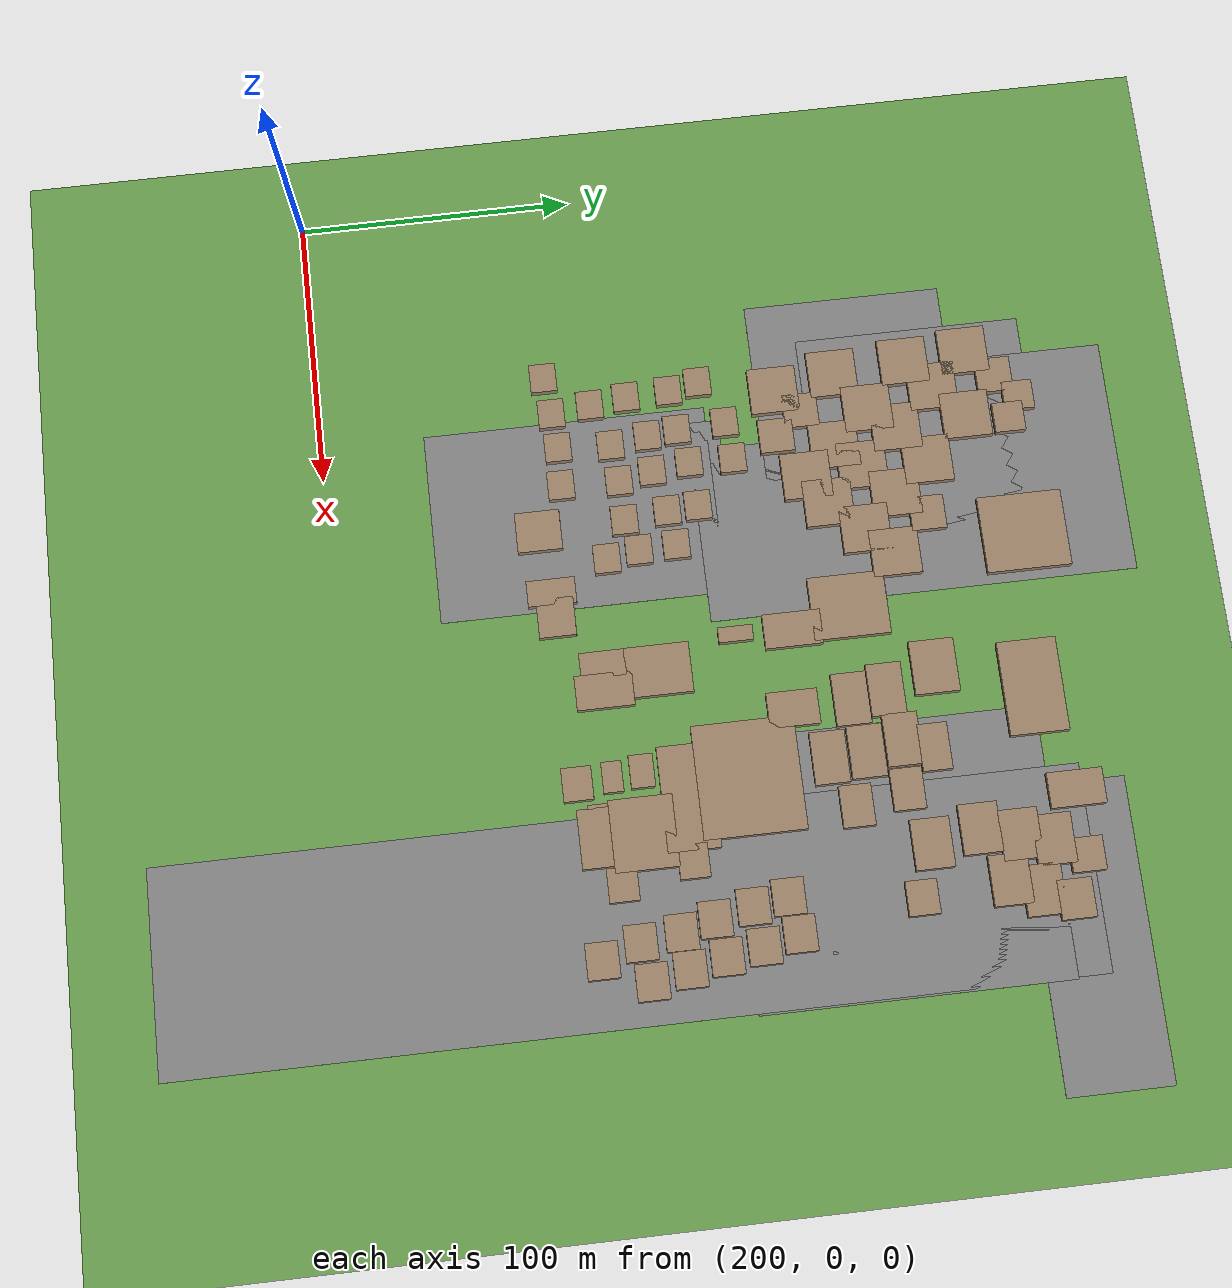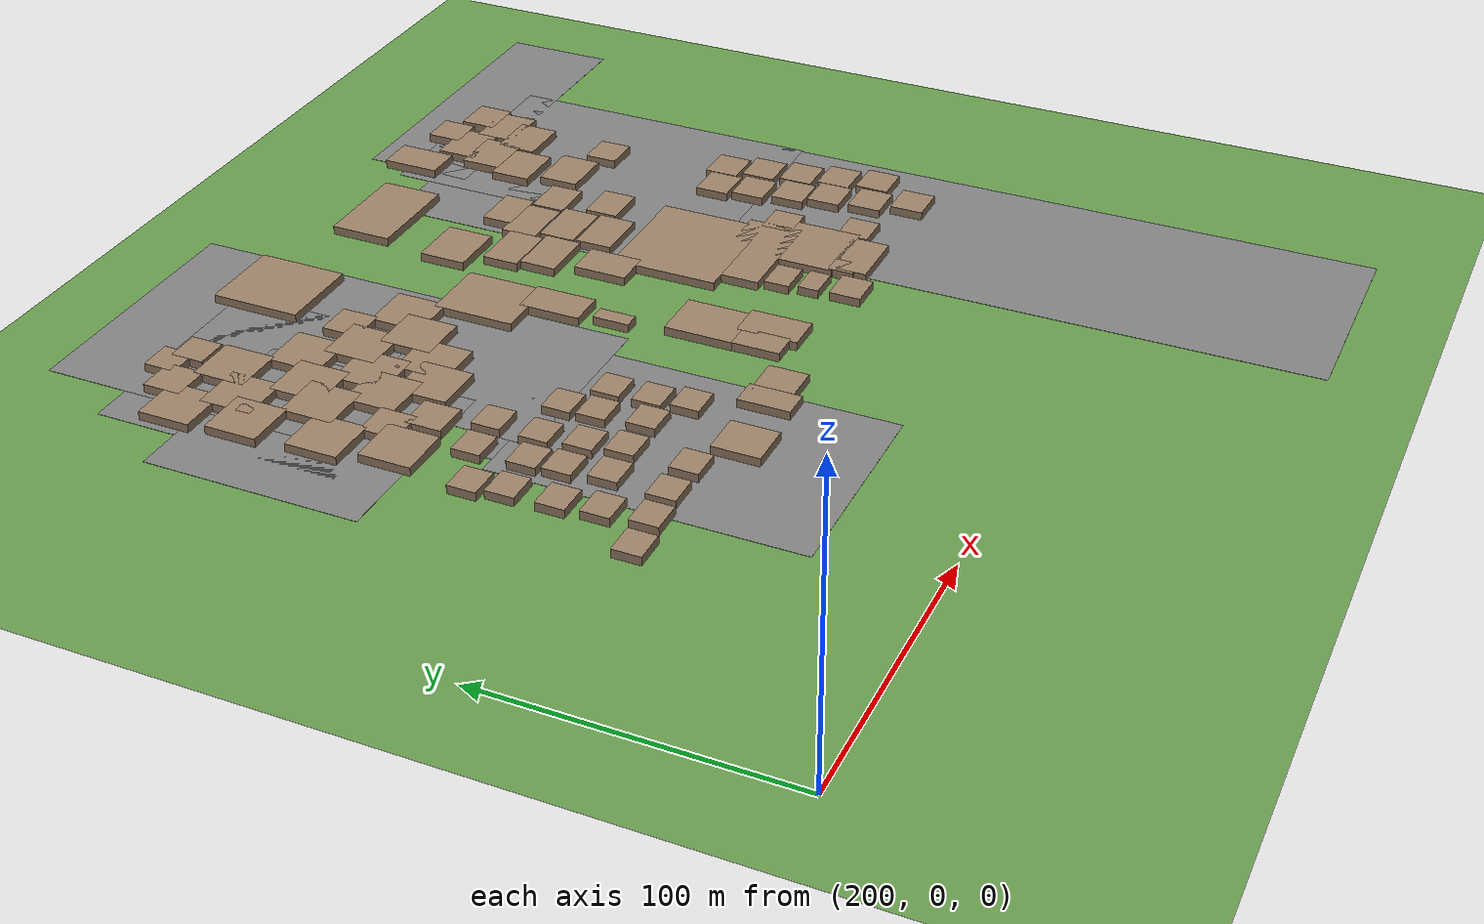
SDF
<sdf version="1.9">
 <world name="kimje_farmland">
  <model name="ground_plane">
   <static>true</static>
   <link name="link">
    <collision name="collision">
     <geometry><plane><normal>0 0 1</normal><size>2000 2000</size></plane></geometry>
    </collision>
    <visual name="visual">
     <geometry><plane><normal>0 0 1</normal><size>2000 2000</size></plane></geometry>
     <material><ambient>0.4 0.6 0.3 1</ambient><diffuse>0.4 0.6 0.3 1</diffuse></material>
    </visual>
   </link>
  </model>
  <model name="osm_23">
   <static>true</static>
   <pose>495.71 254.00 0.040 0 0 0</pose>
   <link name="link">
    <collision name="collision"><geometry><box><size>108.69 38.17 0.080</size></box></geometry></collision>
    <visual name="visual">
     <geometry><box><size>108.69 38.17 0.080</size></box></geometry>
     <material><ambient>0.5 0.5 0.5 1</ambient><diffuse>0.5 0.5 0.5 1</diffuse></material>
    </visual>
   </link>
  </model>
  <model name="osm_37">
   <static>true</static>
   <pose>472.38 92.51 0.040 0 0 0</pose>
   <link name="link">
    <collision name="collision"><geometry><box><size>74.79 330.50 0.080</size></box></geometry></collision>
    <visual name="visual">
     <geometry><box><size>74.79 330.50 0.080</size></box></geometry>
     <material><ambient>0.5 0.5 0.5 1</ambient><diffuse>0.5 0.5 0.5 1</diffuse></material>
    </visual>
   </link>
  </model>
  <model name="osm_38">
   <static>true</static>
   <pose>461.51 189.96 0.040 0 0 0</pose>
   <link name="link">
    <collision name="collision"><geometry><box><size>97.93 111.68 0.080</size></box></geometry></collision>
    <visual name="visual">
     <geometry><box><size>97.93 111.68 0.080</size></box></geometry>
     <material><ambient>0.5 0.5 0.5 1</ambient><diffuse>0.5 0.5 0.5 1</diffuse></material>
    </visual>
   </link>
  </model>
  <model name="osm_44">
   <static>true</static>
   <pose>322.63 243.07 0.040 0 0 0</pose>
   <link name="link">
    <collision name="collision"><geometry><box><size>87.27 94.97 0.080</size></box></geometry></collision>
    <visual name="visual">
     <geometry><box><size>87.27 94.97 0.080</size></box></geometry>
     <material><ambient>0.5 0.5 0.5 1</ambient><diffuse>0.5 0.5 0.5 1</diffuse></material>
    </visual>
   </link>
  </model>
  <model name="osm_48">
   <static>true</static>
   <pose>336.06 166.73 0.040 0 0 0</pose>
   <link name="link">
    <collision name="collision"><geometry><box><size>65.53 64.20 0.080</size></box></geometry></collision>
    <visual name="visual">
     <geometry><box><size>65.53 64.20 0.080</size></box></geometry>
     <material><ambient>0.5 0.5 0.5 1</ambient><diffuse>0.5 0.5 0.5 1</diffuse></material>
    </visual>
   </link>
  </model>
  <model name="osm_52">
   <static>true</static>
   <pose>303.56 220.24 0.040 0 0 0</pose>
   <link name="link">
    <collision name="collision"><geometry><box><size>76.70 83.14 0.080</size></box></geometry></collision>
    <visual name="visual">
     <geometry><box><size>76.70 83.14 0.080</size></box></geometry>
     <material><ambient>0.5 0.5 0.5 1</ambient><diffuse>0.5 0.5 0.5 1</diffuse></material>
    </visual>
   </link>
  </model>
  <model name="osm_55">
   <static>true</static>
   <pose>322.69 89.80 0.040 0 0 0</pose>
   <link name="link">
    <collision name="collision"><geometry><box><size>71.40 103.72 0.080</size></box></geometry></collision>
    <visual name="visual">
     <geometry><box><size>71.40 103.72 0.080</size></box></geometry>
     <material><ambient>0.5 0.5 0.5 1</ambient><diffuse>0.5 0.5 0.5 1</diffuse></material>
    </visual>
   </link>
  </model>
  <model name="osm_110">
   <static>true</static>
   <pose>309.56 123.73 0.040 0 0 0</pose>
   <link name="link">
    <collision name="collision"><geometry><box><size>34.09 45.24 0.080</size></box></geometry></collision>
    <visual name="visual">
     <geometry><box><size>34.09 45.24 0.080</size></box></geometry>
     <material><ambient>0.5 0.5 0.5 1</ambient><diffuse>0.5 0.5 0.5 1</diffuse></material>
    </visual>
   </link>
  </model>
  <model name="osm_124">
   <static>true</static>
   <pose>284.02 197.73 0.040 0 0 0</pose>
   <link name="link">
    <collision name="collision"><geometry><box><size>68.20 72.76 0.080</size></box></geometry></collision>
    <visual name="visual">
     <geometry><box><size>68.20 72.76 0.080</size></box></geometry>
     <material><ambient>0.5 0.5 0.5 1</ambient><diffuse>0.5 0.5 0.5 1</diffuse></material>
    </visual>
   </link>
  </model>
  <model name="osm_125">
   <static>true</static>
   <pose>302.59 221.21 0.040 0 0 0</pose>
   <link name="link">
    <collision name="collision"><geometry><box><size>45.05 38.42 0.080</size></box></geometry></collision>
    <visual name="visual">
     <geometry><box><size>45.05 38.42 0.080</size></box></geometry>
     <material><ambient>0.5 0.5 0.5 1</ambient><diffuse>0.5 0.5 0.5 1</diffuse></material>
    </visual>
   </link>
  </model>
  <model name="osm_131">
   <static>true</static>
   <pose>480.58 173.67 0.040 0 0 0</pose>
   <link name="link">
    <collision name="collision"><geometry><box><size>23.74 22.22 0.080</size></box></geometry></collision>
    <visual name="visual">
     <geometry><box><size>23.74 22.22 0.080</size></box></geometry>
     <material><ambient>0.5 0.5 0.5 1</ambient><diffuse>0.5 0.5 0.5 1</diffuse></material>
    </visual>
   </link>
  </model>
  <model name="osm_1109">
   <static>true</static>
   <pose>296.20 257.35 1.500 0 0 0</pose>
   <link name="link">
    <collision name="collision"><geometry><box><size>11.01 11.03 3.000</size></box></geometry></collision>
    <visual name="visual">
     <geometry><box><size>11.01 11.03 3.000</size></box></geometry>
     <material><ambient>0.6 0.5 0.4 1</ambient><diffuse>0.6 0.5 0.4 1</diffuse></material>
    </visual>
   </link>
  </model>
  <model name="osm_1110">
   <static>true</static>
   <pose>287.37 249.57 1.500 0 0 0</pose>
   <link name="link">
    <collision name="collision"><geometry><box><size>13.13 13.04 3.000</size></box></geometry></collision>
    <visual name="visual">
     <geometry><box><size>13.13 13.04 3.000</size></box></geometry>
     <material><ambient>0.6 0.5 0.4 1</ambient><diffuse>0.6 0.5 0.4 1</diffuse></material>
    </visual>
   </link>
  </model>
  <model name="osm_1111">
   <static>true</static>
   <pose>304.28 252.70 1.500 0 0 0</pose>
   <link name="link">
    <collision name="collision"><geometry><box><size>11.35 11.17 3.000</size></box></geometry></collision>
    <visual name="visual">
     <geometry><box><size>11.35 11.17 3.000</size></box></geometry>
     <material><ambient>0.6 0.5 0.4 1</ambient><diffuse>0.6 0.5 0.4 1</diffuse></material>
    </visual>
   </link>
  </model>
  <model name="osm_1119">
   <static>true</static>
   <pose>348.49 251.49 1.500 0 0 0</pose>
   <link name="link">
    <collision name="collision"><geometry><box><size>28.58 30.75 3.000</size></box></geometry></collision>
    <visual name="visual">
     <geometry><box><size>28.58 30.75 3.000</size></box></geometry>
     <material><ambient>0.6 0.5 0.4 1</ambient><diffuse>0.6 0.5 0.4 1</diffuse></material>
    </visual>
   </link>
  </model>
  <model name="osm_1131">
   <static>true</static>
   <pose>406.07 245.63 1.500 0 0 0</pose>
   <link name="link">
    <collision name="collision"><geometry><box><size>34.39 21.31 3.000</size></box></geometry></collision>
    <visual name="visual">
     <geometry><box><size>34.39 21.31 3.000</size></box></geometry>
     <material><ambient>0.6 0.5 0.4 1</ambient><diffuse>0.6 0.5 0.4 1</diffuse></material>
    </visual>
   </link>
  </model>
  <model name="osm_1135">
   <static>true</static>
   <pose>444.30 255.18 1.500 0 0 0</pose>
   <link name="link">
    <collision name="collision"><geometry><box><size>12.84 19.86 3.000</size></box></geometry></collision>
    <visual name="visual">
     <geometry><box><size>12.84 19.86 3.000</size></box></geometry>
     <material><ambient>0.6 0.5 0.4 1</ambient><diffuse>0.6 0.5 0.4 1</diffuse></material>
    </visual>
   </link>
  </model>
  <model name="osm_1142">
   <static>true</static>
   <pose>468.00 255.26 1.500 0 0 0</pose>
   <link name="link">
    <collision name="collision"><geometry><box><size>12.22 11.98 3.000</size></box></geometry></collision>
    <visual name="visual">
     <geometry><box><size>12.22 11.98 3.000</size></box></geometry>
     <material><ambient>0.6 0.5 0.4 1</ambient><diffuse>0.6 0.5 0.4 1</diffuse></material>
    </visual>
   </link>
  </model>
  <model name="osm_1143">
   <static>true</static>
   <pose>483.04 249.04 1.500 0 0 0</pose>
   <link name="link">
    <collision name="collision"><geometry><box><size>14.06 12.33 3.000</size></box></geometry></collision>
    <visual name="visual">
     <geometry><box><size>14.06 12.33 3.000</size></box></geometry>
     <material><ambient>0.6 0.5 0.4 1</ambient><diffuse>0.6 0.5 0.4 1</diffuse></material>
    </visual>
   </link>
  </model>
  <model name="osm_1226">
   <static>true</static>
   <pose>485.71 82.69 1.500 0 0 0</pose>
   <link name="link">
    <collision name="collision"><geometry><box><size>13.01 11.50 3.000</size></box></geometry></collision>
    <visual name="visual">
     <geometry><box><size>13.01 11.50 3.000</size></box></geometry>
     <material><ambient>0.6 0.5 0.4 1</ambient><diffuse>0.6 0.5 0.4 1</diffuse></material>
    </visual>
   </link>
  </model>
  <model name="osm_1227">
   <static>true</static>
   <pose>481.03 96.54 1.500 0 0 0</pose>
   <link name="link">
    <collision name="collision"><geometry><box><size>13.00 11.50 3.000</size></box></geometry></collision>
    <visual name="visual">
     <geometry><box><size>13.00 11.50 3.000</size></box></geometry>
     <material><ambient>0.6 0.5 0.4 1</ambient><diffuse>0.6 0.5 0.4 1</diffuse></material>
    </visual>
   </link>
  </model>
  <model name="osm_1228">
   <static>true</static>
   <pose>494.89 99.07 1.500 0 0 0</pose>
   <link name="link">
    <collision name="collision"><geometry><box><size>13.00 11.50 3.000</size></box></geometry></collision>
    <visual name="visual">
     <geometry><box><size>13.00 11.50 3.000</size></box></geometry>
     <material><ambient>0.6 0.5 0.4 1</ambient><diffuse>0.6 0.5 0.4 1</diffuse></material>
    </visual>
   </link>
  </model>
  <model name="osm_1229">
   <static>true</static>
   <pose>492.19 112.56 1.500 0 0 0</pose>
   <link name="link">
    <collision name="collision"><geometry><box><size>13.00 11.50 3.000</size></box></geometry></collision>
    <visual name="visual">
     <geometry><box><size>13.00 11.50 3.000</size></box></geometry>
     <material><ambient>0.6 0.5 0.4 1</ambient><diffuse>0.6 0.5 0.4 1</diffuse></material>
    </visual>
   </link>
  </model>
  <model name="osm_1230">
   <static>true</static>
   <pose>479.05 110.95 1.500 0 0 0</pose>
   <link name="link">
    <collision name="collision"><geometry><box><size>13.01 11.50 3.000</size></box></geometry></collision>
    <visual name="visual">
     <geometry><box><size>13.01 11.50 3.000</size></box></geometry>
     <material><ambient>0.6 0.5 0.4 1</ambient><diffuse>0.6 0.5 0.4 1</diffuse></material>
    </visual>
   </link>
  </model>
  <model name="osm_1238">
   <static>true</static>
   <pose>489.31 125.70 1.500 0 0 0</pose>
   <link name="link">
    <collision name="collision"><geometry><box><size>13.00 11.51 3.000</size></box></geometry></collision>
    <visual name="visual">
     <geometry><box><size>13.00 11.51 3.000</size></box></geometry>
     <material><ambient>0.6 0.5 0.4 1</ambient><diffuse>0.6 0.5 0.4 1</diffuse></material>
    </visual>
   </link>
  </model>
  <model name="osm_1239">
   <static>true</static>
   <pose>475.81 123.18 1.500 0 0 0</pose>
   <link name="link">
    <collision name="collision"><geometry><box><size>13.00 11.50 3.000</size></box></geometry></collision>
    <visual name="visual">
     <geometry><box><size>13.00 11.50 3.000</size></box></geometry>
     <material><ambient>0.6 0.5 0.4 1</ambient><diffuse>0.6 0.5 0.4 1</diffuse></material>
    </visual>
   </link>
  </model>
  <model name="osm_1240">
   <static>true</static>
   <pose>472.93 136.86 1.500 0 0 0</pose>
   <link name="link">
    <collision name="collision"><geometry><box><size>13.00 11.50 3.000</size></box></geometry></collision>
    <visual name="visual">
     <geometry><box><size>13.00 11.50 3.000</size></box></geometry>
     <material><ambient>0.6 0.5 0.4 1</ambient><diffuse>0.6 0.5 0.4 1</diffuse></material>
    </visual>
   </link>
  </model>
  <model name="osm_1241">
   <static>true</static>
   <pose>487.15 139.02 1.500 0 0 0</pose>
   <link name="link">
    <collision name="collision"><geometry><box><size>13.01 11.50 3.000</size></box></geometry></collision>
    <visual name="visual">
     <geometry><box><size>13.01 11.50 3.000</size></box></geometry>
     <material><ambient>0.6 0.5 0.4 1</ambient><diffuse>0.6 0.5 0.4 1</diffuse></material>
    </visual>
   </link>
  </model>
  <model name="osm_1242">
   <static>true</static>
   <pose>484.27 151.80 1.500 0 0 0</pose>
   <link name="link">
    <collision name="collision"><geometry><box><size>13.00 11.50 3.000</size></box></geometry></collision>
    <visual name="visual">
     <geometry><box><size>13.00 11.50 3.000</size></box></geometry>
     <material><ambient>0.6 0.5 0.4 1</ambient><diffuse>0.6 0.5 0.4 1</diffuse></material>
    </visual>
   </link>
  </model>
  <model name="osm_1243">
   <static>true</static>
   <pose>470.95 149.46 1.500 0 0 0</pose>
   <link name="link">
    <collision name="collision"><geometry><box><size>13.01 11.50 3.000</size></box></geometry></collision>
    <visual name="visual">
     <geometry><box><size>13.01 11.50 3.000</size></box></geometry>
     <material><ambient>0.6 0.5 0.4 1</ambient><diffuse>0.6 0.5 0.4 1</diffuse></material>
    </visual>
   </link>
  </model>
  <model name="osm_1258">
   <static>true</static>
   <pose>476.59 195.83 1.500 0 0 0</pose>
   <link name="link">
    <collision name="collision"><geometry><box><size>12.39 11.13 3.000</size></box></geometry></collision>
    <visual name="visual">
     <geometry><box><size>12.39 11.13 3.000</size></box></geometry>
     <material><ambient>0.6 0.5 0.4 1</ambient><diffuse>0.6 0.5 0.4 1</diffuse></material>
    </visual>
   </link>
  </model>
  <model name="osm_1263">
   <static>true</static>
   <pose>478.64 238.23 1.500 0 0 0</pose>
   <link name="link">
    <collision name="collision"><geometry><box><size>18.04 13.90 3.000</size></box></geometry></collision>
    <visual name="visual">
     <geometry><box><size>18.04 13.90 3.000</size></box></geometry>
     <material><ambient>0.6 0.5 0.4 1</ambient><diffuse>0.6 0.5 0.4 1</diffuse></material>
    </visual>
   </link>
  </model>
  <model name="osm_1264">
   <static>true</static>
   <pose>473.79 227.25 1.500 0 0 0</pose>
   <link name="link">
    <collision name="collision"><geometry><box><size>18.05 13.91 3.000</size></box></geometry></collision>
    <visual name="visual">
     <geometry><box><size>18.05 13.91 3.000</size></box></geometry>
     <material><ambient>0.6 0.5 0.4 1</ambient><diffuse>0.6 0.5 0.4 1</diffuse></material>
    </visual>
   </link>
  </model>
  <model name="osm_1265">
   <static>true</static>
   <pose>458.30 233.01 1.500 0 0 0</pose>
   <link name="link">
    <collision name="collision"><geometry><box><size>18.04 13.90 3.000</size></box></geometry></collision>
    <visual name="visual">
     <geometry><box><size>18.04 13.90 3.000</size></box></geometry>
     <material><ambient>0.6 0.5 0.4 1</ambient><diffuse>0.6 0.5 0.4 1</diffuse></material>
    </visual>
   </link>
  </model>
  <model name="osm_1266">
   <static>true</static>
   <pose>454.70 219.33 1.500 0 0 0</pose>
   <link name="link">
    <collision name="collision"><geometry><box><size>18.05 13.91 3.000</size></box></geometry></collision>
    <visual name="visual">
     <geometry><box><size>18.05 13.91 3.000</size></box></geometry>
     <material><ambient>0.6 0.5 0.4 1</ambient><diffuse>0.6 0.5 0.4 1</diffuse></material>
    </visual>
   </link>
  </model>
  <model name="osm_1267">
   <static>true</static>
   <pose>461.36 244.53 1.500 0 0 0</pose>
   <link name="link">
    <collision name="collision"><geometry><box><size>18.04 13.90 3.000</size></box></geometry></collision>
    <visual name="visual">
     <geometry><box><size>18.04 13.90 3.000</size></box></geometry>
     <material><ambient>0.6 0.5 0.4 1</ambient><diffuse>0.6 0.5 0.4 1</diffuse></material>
    </visual>
   </link>
  </model>
  <model name="osm_1268">
   <static>true</static>
   <pose>458.12 201.87 1.500 0 0 0</pose>
   <link name="link">
    <collision name="collision"><geometry><box><size>18.04 13.90 3.000</size></box></geometry></collision>
    <visual name="visual">
     <geometry><box><size>18.04 13.90 3.000</size></box></geometry>
     <material><ambient>0.6 0.5 0.4 1</ambient><diffuse>0.6 0.5 0.4 1</diffuse></material>
    </visual>
   </link>
  </model>
  <model name="osm_1269">
   <static>true</static>
   <pose>403.32 180.63 1.500 0 0 0</pose>
   <link name="link">
    <collision name="collision"><geometry><box><size>19.08 12.56 3.000</size></box></geometry></collision>
    <visual name="visual">
     <geometry><box><size>19.08 12.56 3.000</size></box></geometry>
     <material><ambient>0.6 0.5 0.4 1</ambient><diffuse>0.6 0.5 0.4 1</diffuse></material>
    </visual>
   </link>
  </model>
  <model name="osm_1270">
   <static>true</static>
   <pose>401.23 193.48 1.500 0 0 0</pose>
   <link name="link">
    <collision name="collision"><geometry><box><size>19.08 12.55 3.000</size></box></geometry></collision>
    <visual name="visual">
     <geometry><box><size>19.08 12.55 3.000</size></box></geometry>
     <material><ambient>0.6 0.5 0.4 1</ambient><diffuse>0.6 0.5 0.4 1</diffuse></material>
    </visual>
   </link>
  </model>
  <model name="osm_1271">
   <static>true</static>
   <pose>419.95 196.72 1.500 0 0 0</pose>
   <link name="link">
    <collision name="collision"><geometry><box><size>19.08 12.55 3.000</size></box></geometry></collision>
    <visual name="visual">
     <geometry><box><size>19.08 12.55 3.000</size></box></geometry>
     <material><ambient>0.6 0.5 0.4 1</ambient><diffuse>0.6 0.5 0.4 1</diffuse></material>
    </visual>
   </link>
  </model>
  <model name="osm_1272">
   <static>true</static>
   <pose>422.83 183.58 1.500 0 0 0</pose>
   <link name="link">
    <collision name="collision"><geometry><box><size>19.08 12.56 3.000</size></box></geometry></collision>
    <visual name="visual">
     <geometry><box><size>19.08 12.56 3.000</size></box></geometry>
     <material><ambient>0.6 0.5 0.4 1</ambient><diffuse>0.6 0.5 0.4 1</diffuse></material>
    </visual>
   </link>
  </model>
  <model name="osm_1273">
   <static>true</static>
   <pose>423.55 170.26 1.500 0 0 0</pose>
   <link name="link">
    <collision name="collision"><geometry><box><size>19.08 12.56 3.000</size></box></geometry></collision>
    <visual name="visual">
     <geometry><box><size>19.08 12.56 3.000</size></box></geometry>
     <material><ambient>0.6 0.5 0.4 1</ambient><diffuse>0.6 0.5 0.4 1</diffuse></material>
    </visual>
   </link>
  </model>
  <model name="osm_1274">
   <static>true</static>
   <pose>437.87 196.07 1.500 0 0 0</pose>
   <link name="link">
    <collision name="collision"><geometry><box><size>15.11 11.48 3.000</size></box></geometry></collision>
    <visual name="visual">
     <geometry><box><size>15.11 11.48 3.000</size></box></geometry>
     <material><ambient>0.6 0.5 0.4 1</ambient><diffuse>0.6 0.5 0.4 1</diffuse></material>
    </visual>
   </link>
  </model>
  <model name="osm_1275">
   <static>true</static>
   <pose>441.83 177.53 1.500 0 0 0</pose>
   <link name="link">
    <collision name="collision"><geometry><box><size>15.11 11.48 3.000</size></box></geometry></collision>
    <visual name="visual">
     <geometry><box><size>15.11 11.48 3.000</size></box></geometry>
     <material><ambient>0.6 0.5 0.4 1</ambient><diffuse>0.6 0.5 0.4 1</diffuse></material>
    </visual>
   </link>
  </model>
  <model name="osm_1276">
   <static>true</static>
   <pose>404.44 159.70 1.500 0 0 0</pose>
   <link name="link">
    <collision name="collision"><geometry><box><size>12.95 18.27 3.000</size></box></geometry></collision>
    <visual name="visual">
     <geometry><box><size>12.95 18.27 3.000</size></box></geometry>
     <material><ambient>0.6 0.5 0.4 1</ambient><diffuse>0.6 0.5 0.4 1</diffuse></material>
    </visual>
   </link>
  </model>
  <model name="osm_1277">
   <static>true</static>
   <pose>460.19 92.65 1.500 0 0 0</pose>
   <link name="link">
    <collision name="collision"><geometry><box><size>12.18 10.73 3.000</size></box></geometry></collision>
    <visual name="visual">
     <geometry><box><size>12.18 10.73 3.000</size></box></geometry>
     <material><ambient>0.6 0.5 0.4 1</ambient><diffuse>0.6 0.5 0.4 1</diffuse></material>
    </visual>
   </link>
  </model>
  <model name="osm_1278">
   <static>true</static>
   <pose>454.81 118.14 1.500 0 0 0</pose>
   <link name="link">
    <collision name="collision"><geometry><box><size>12.17 10.72 3.000</size></box></geometry></collision>
    <visual name="visual">
     <geometry><box><size>12.17 10.72 3.000</size></box></geometry>
     <material><ambient>0.6 0.5 0.4 1</ambient><diffuse>0.6 0.5 0.4 1</diffuse></material>
    </visual>
   </link>
  </model>
  <model name="osm_1280">
   <static>true</static>
   <pose>422.92 80.47 1.500 0 0 0</pose>
   <link name="link">
    <collision name="collision"><geometry><box><size>12.18 10.72 3.000</size></box></geometry></collision>
    <visual name="visual">
     <geometry><box><size>12.18 10.72 3.000</size></box></geometry>
     <material><ambient>0.6 0.5 0.4 1</ambient><diffuse>0.6 0.5 0.4 1</diffuse></material>
    </visual>
   </link>
  </model>
  <model name="osm_1321">
   <static>true</static>
   <pose>308.31 133.69 1.500 0 0 0</pose>
   <link name="link">
    <collision name="collision"><geometry><box><size>10.86 9.65 3.000</size></box></geometry></collision>
    <visual name="visual">
     <geometry><box><size>10.86 9.65 3.000</size></box></geometry>
     <material><ambient>0.6 0.5 0.4 1</ambient><diffuse>0.6 0.5 0.4 1</diffuse></material>
    </visual>
   </link>
  </model>
  <model name="osm_1322">
   <static>true</static>
   <pose>310.07 119.88 1.500 0 0 0</pose>
   <link name="link">
    <collision name="collision"><geometry><box><size>10.86 9.66 3.000</size></box></geometry></collision>
    <visual name="visual">
     <geometry><box><size>10.86 9.66 3.000</size></box></geometry>
     <material><ambient>0.6 0.5 0.4 1</ambient><diffuse>0.6 0.5 0.4 1</diffuse></material>
    </visual>
   </link>
  </model>
  <model name="osm_1323">
   <static>true</static>
   <pose>312.59 107.45 1.500 0 0 0</pose>
   <link name="link">
    <collision name="collision"><geometry><box><size>10.86 9.66 3.000</size></box></geometry></collision>
    <visual name="visual">
     <geometry><box><size>10.86 9.66 3.000</size></box></geometry>
     <material><ambient>0.6 0.5 0.4 1</ambient><diffuse>0.6 0.5 0.4 1</diffuse></material>
    </visual>
   </link>
  </model>
  <model name="osm_1324">
   <static>true</static>
   <pose>327.71 107.82 1.500 0 0 0</pose>
   <link name="link">
    <collision name="collision"><geometry><box><size>10.85 9.66 3.000</size></box></geometry></collision>
    <visual name="visual">
     <geometry><box><size>10.85 9.66 3.000</size></box></geometry>
     <material><ambient>0.6 0.5 0.4 1</ambient><diffuse>0.6 0.5 0.4 1</diffuse></material>
    </visual>
   </link>
  </model>
  <model name="osm_1325">
   <static>true</static>
   <pose>325.90 123.65 1.500 0 0 0</pose>
   <link name="link">
    <collision name="collision"><geometry><box><size>10.86 9.66 3.000</size></box></geometry></collision>
    <visual name="visual">
     <geometry><box><size>10.86 9.66 3.000</size></box></geometry>
     <material><ambient>0.6 0.5 0.4 1</ambient><diffuse>0.6 0.5 0.4 1</diffuse></material>
    </visual>
   </link>
  </model>
  <model name="osm_1326">
   <static>true</static>
   <pose>325.19 135.00 1.500 0 0 0</pose>
   <link name="link">
    <collision name="collision"><geometry><box><size>10.85 9.66 3.000</size></box></geometry></collision>
    <visual name="visual">
     <geometry><box><size>10.85 9.66 3.000</size></box></geometry>
     <material><ambient>0.6 0.5 0.4 1</ambient><diffuse>0.6 0.5 0.4 1</diffuse></material>
    </visual>
   </link>
  </model>
  <model name="osm_1327">
   <static>true</static>
   <pose>279.83 129.24 1.500 0 0 0</pose>
   <link name="link">
    <collision name="collision"><geometry><box><size>10.85 9.65 3.000</size></box></geometry></collision>
    <visual name="visual">
     <geometry><box><size>10.85 9.65 3.000</size></box></geometry>
     <material><ambient>0.6 0.5 0.4 1</ambient><diffuse>0.6 0.5 0.4 1</diffuse></material>
    </visual>
   </link>
  </model>
  <model name="osm_1328">
   <static>true</static>
   <pose>277.67 140.39 1.500 0 0 0</pose>
   <link name="link">
    <collision name="collision"><geometry><box><size>10.85 9.66 3.000</size></box></geometry></collision>
    <visual name="visual">
     <geometry><box><size>10.85 9.66 3.000</size></box></geometry>
     <material><ambient>0.6 0.5 0.4 1</ambient><diffuse>0.6 0.5 0.4 1</diffuse></material>
    </visual>
   </link>
  </model>
  <model name="osm_1329">
   <static>true</static>
   <pose>280.55 113.40 1.500 0 0 0</pose>
   <link name="link">
    <collision name="collision"><geometry><box><size>10.85 9.65 3.000</size></box></geometry></collision>
    <visual name="visual">
     <geometry><box><size>10.85 9.65 3.000</size></box></geometry>
     <material><ambient>0.6 0.5 0.4 1</ambient><diffuse>0.6 0.5 0.4 1</diffuse></material>
    </visual>
   </link>
  </model>
  <model name="osm_1330">
   <static>true</static>
   <pose>282.17 99.90 1.500 0 0 0</pose>
   <link name="link">
    <collision name="collision"><geometry><box><size>10.86 9.66 3.000</size></box></geometry></collision>
    <visual name="visual">
     <geometry><box><size>10.86 9.66 3.000</size></box></geometry>
     <material><ambient>0.6 0.5 0.4 1</ambient><diffuse>0.6 0.5 0.4 1</diffuse></material>
    </visual>
   </link>
  </model>
  <model name="osm_1333">
   <static>true</static>
   <pose>298.55 105.84 1.500 0 0 0</pose>
   <link name="link">
    <collision name="collision"><geometry><box><size>10.86 9.65 3.000</size></box></geometry></collision>
    <visual name="visual">
     <geometry><box><size>10.86 9.65 3.000</size></box></geometry>
     <material><ambient>0.6 0.5 0.4 1</ambient><diffuse>0.6 0.5 0.4 1</diffuse></material>
    </visual>
   </link>
  </model>
  <model name="osm_1334">
   <static>true</static>
   <pose>296.39 119.70 1.500 0 0 0</pose>
   <link name="link">
    <collision name="collision"><geometry><box><size>10.86 9.65 3.000</size></box></geometry></collision>
    <visual name="visual">
     <geometry><box><size>10.86 9.65 3.000</size></box></geometry>
     <material><ambient>0.6 0.5 0.4 1</ambient><diffuse>0.6 0.5 0.4 1</diffuse></material>
    </visual>
   </link>
  </model>
  <model name="osm_1335">
   <static>true</static>
   <pose>295.31 130.68 1.500 0 0 0</pose>
   <link name="link">
    <collision name="collision"><geometry><box><size>10.86 9.66 3.000</size></box></geometry></collision>
    <visual name="visual">
     <geometry><box><size>10.86 9.66 3.000</size></box></geometry>
     <material><ambient>0.6 0.5 0.4 1</ambient><diffuse>0.6 0.5 0.4 1</diffuse></material>
    </visual>
   </link>
  </model>
  <model name="osm_1336">
   <static>true</static>
   <pose>339.04 125.46 1.500 0 0 0</pose>
   <link name="link">
    <collision name="collision"><geometry><box><size>10.85 9.66 3.000</size></box></geometry></collision>
    <visual name="visual">
     <geometry><box><size>10.85 9.66 3.000</size></box></geometry>
     <material><ambient>0.6 0.5 0.4 1</ambient><diffuse>0.6 0.5 0.4 1</diffuse></material>
    </visual>
   </link>
  </model>
  <model name="osm_1337">
   <static>true</static>
   <pose>339.58 111.77 1.500 0 0 0</pose>
   <link name="link">
    <collision name="collision"><geometry><box><size>10.86 9.66 3.000</size></box></geometry></collision>
    <visual name="visual">
     <geometry><box><size>10.86 9.66 3.000</size></box></geometry>
     <material><ambient>0.6 0.5 0.4 1</ambient><diffuse>0.6 0.5 0.4 1</diffuse></material>
    </visual>
   </link>
  </model>
  <model name="osm_1338">
   <static>true</static>
   <pose>341.56 99.90 1.500 0 0 0</pose>
   <link name="link">
    <collision name="collision"><geometry><box><size>10.85 9.66 3.000</size></box></geometry></collision>
    <visual name="visual">
     <geometry><box><size>10.85 9.66 3.000</size></box></geometry>
     <material><ambient>0.6 0.5 0.4 1</ambient><diffuse>0.6 0.5 0.4 1</diffuse></material>
    </visual>
   </link>
  </model>
  <model name="osm_1339">
   <static>true</static>
   <pose>311.86 86.22 1.500 0 0 0</pose>
   <link name="link">
    <collision name="collision"><geometry><box><size>10.86 9.66 3.000</size></box></geometry></collision>
    <visual name="visual">
     <geometry><box><size>10.86 9.66 3.000</size></box></geometry>
     <material><ambient>0.6 0.5 0.4 1</ambient><diffuse>0.6 0.5 0.4 1</diffuse></material>
    </visual>
   </link>
  </model>
  <model name="osm_1340">
   <static>true</static>
   <pose>297.29 86.58 1.500 0 0 0</pose>
   <link name="link">
    <collision name="collision"><geometry><box><size>10.85 9.65 3.000</size></box></geometry></collision>
    <visual name="visual">
     <geometry><box><size>10.85 9.65 3.000</size></box></geometry>
     <material><ambient>0.6 0.5 0.4 1</ambient><diffuse>0.6 0.5 0.4 1</diffuse></material>
    </visual>
   </link>
  </model>
  <model name="osm_1341">
   <static>true</static>
   <pose>283.97 85.50 1.500 0 0 0</pose>
   <link name="link">
    <collision name="collision"><geometry><box><size>10.86 9.65 3.000</size></box></geometry></collision>
    <visual name="visual">
     <geometry><box><size>10.86 9.65 3.000</size></box></geometry>
     <material><ambient>0.6 0.5 0.4 1</ambient><diffuse>0.6 0.5 0.4 1</diffuse></material>
    </visual>
   </link>
  </model>
  <model name="osm_1342">
   <static>true</static>
   <pose>269.75 83.88 1.500 0 0 0</pose>
   <link name="link">
    <collision name="collision"><geometry><box><size>10.86 9.66 3.000</size></box></geometry></collision>
    <visual name="visual">
     <geometry><box><size>10.86 9.66 3.000</size></box></geometry>
     <material><ambient>0.6 0.5 0.4 1</ambient><diffuse>0.6 0.5 0.4 1</diffuse></material>
    </visual>
   </link>
  </model>
  <model name="osm_1344">
   <static>true</static>
   <pose>308.63 149.75 1.500 0 0 0</pose>
   <link name="link">
    <collision name="collision"><geometry><box><size>10.85 9.66 3.000</size></box></geometry></collision>
    <visual name="visual">
     <geometry><box><size>10.85 9.66 3.000</size></box></geometry>
     <material><ambient>0.6 0.5 0.4 1</ambient><diffuse>0.6 0.5 0.4 1</diffuse></material>
    </visual>
   </link>
  </model>
  <model name="osm_1345">
   <static>true</static>
   <pose>294.41 148.49 1.500 0 0 0</pose>
   <link name="link">
    <collision name="collision"><geometry><box><size>10.85 9.65 3.000</size></box></geometry></collision>
    <visual name="visual">
     <geometry><box><size>10.85 9.65 3.000</size></box></geometry>
     <material><ambient>0.6 0.5 0.4 1</ambient><diffuse>0.6 0.5 0.4 1</diffuse></material>
    </visual>
   </link>
  </model>
  <model name="osm_1346">
   <static>true</static>
   <pose>301.81 166.74 1.500 0 0 0</pose>
   <link name="link">
    <collision name="collision"><geometry><box><size>12.71 12.62 3.000</size></box></geometry></collision>
    <visual name="visual">
     <geometry><box><size>12.71 12.62 3.000</size></box></geometry>
     <material><ambient>0.6 0.5 0.4 1</ambient><diffuse>0.6 0.5 0.4 1</diffuse></material>
    </visual>
   </link>
  </model>
  <model name="osm_1347">
   <static>true</static>
   <pose>293.09 176.83 1.500 0 0 0</pose>
   <link name="link">
    <collision name="collision"><geometry><box><size>12.72 12.63 3.000</size></box></geometry></collision>
    <visual name="visual">
     <geometry><box><size>12.72 12.63 3.000</size></box></geometry>
     <material><ambient>0.6 0.5 0.4 1</ambient><diffuse>0.6 0.5 0.4 1</diffuse></material>
    </visual>
   </link>
  </model>
  <model name="osm_1349">
   <static>true</static>
   <pose>337.55 217.69 1.500 0 0 0</pose>
   <link name="link">
    <collision name="collision"><geometry><box><size>12.71 12.62 3.000</size></box></geometry></collision>
    <visual name="visual">
     <geometry><box><size>12.71 12.62 3.000</size></box></geometry>
     <material><ambient>0.6 0.5 0.4 1</ambient><diffuse>0.6 0.5 0.4 1</diffuse></material>
    </visual>
   </link>
  </model>
  <model name="osm_1350">
   <static>true</static>
   <pose>294.81 201.34 1.500 0 0 0</pose>
   <link name="link">
    <collision name="collision"><geometry><box><size>17.54 17.70 3.000</size></box></geometry></collision>
    <visual name="visual">
     <geometry><box><size>17.54 17.70 3.000</size></box></geometry>
     <material><ambient>0.6 0.5 0.4 1</ambient><diffuse>0.6 0.5 0.4 1</diffuse></material>
    </visual>
   </link>
  </model>
  <model name="osm_1351">
   <static>true</static>
   <pose>307.66 187.42 1.500 0 0 0</pose>
   <link name="link">
    <collision name="collision"><geometry><box><size>17.54 17.70 3.000</size></box></geometry></collision>
    <visual name="visual">
     <geometry><box><size>17.54 17.70 3.000</size></box></geometry>
     <material><ambient>0.6 0.5 0.4 1</ambient><diffuse>0.6 0.5 0.4 1</diffuse></material>
    </visual>
   </link>
  </model>
  <model name="osm_1352">
   <static>true</static>
   <pose>329.43 182.38 1.500 0 0 0</pose>
   <link name="link">
    <collision name="collision"><geometry><box><size>17.54 17.70 3.000</size></box></geometry></collision>
    <visual name="visual">
     <geometry><box><size>17.54 17.70 3.000</size></box></geometry>
     <material><ambient>0.6 0.5 0.4 1</ambient><diffuse>0.6 0.5 0.4 1</diffuse></material>
    </visual>
   </link>
  </model>
  <model name="osm_1353">
   <static>true</static>
   <pose>318.27 175.72 1.500 0 0 0</pose>
   <link name="link">
    <collision name="collision"><geometry><box><size>17.54 17.70 3.000</size></box></geometry></collision>
    <visual name="visual">
     <geometry><box><size>17.54 17.70 3.000</size></box></geometry>
     <material><ambient>0.6 0.5 0.4 1</ambient><diffuse>0.6 0.5 0.4 1</diffuse></material>
    </visual>
   </link>
  </model>
  <model name="osm_1354">
   <static>true</static>
   <pose>316.48 196.60 1.500 0 0 0</pose>
   <link name="link">
    <collision name="collision"><geometry><box><size>17.54 17.69 3.000</size></box></geometry></collision>
    <visual name="visual">
     <geometry><box><size>17.54 17.69 3.000</size></box></geometry>
     <material><ambient>0.6 0.5 0.4 1</ambient><diffuse>0.6 0.5 0.4 1</diffuse></material>
    </visual>
   </link>
  </model>
  <model name="osm_1355">
   <static>true</static>
   <pose>303.34 210.82 1.500 0 0 0</pose>
   <link name="link">
    <collision name="collision"><geometry><box><size>17.53 17.70 3.000</size></box></geometry></collision>
    <visual name="visual">
     <geometry><box><size>17.53 17.70 3.000</size></box></geometry>
     <material><ambient>0.6 0.5 0.4 1</ambient><diffuse>0.6 0.5 0.4 1</diffuse></material>
    </visual>
   </link>
  </model>
  <model name="osm_1356">
   <static>true</static>
   <pose>317.20 220.54 1.500 0 0 0</pose>
   <link name="link">
    <collision name="collision"><geometry><box><size>17.53 17.70 3.000</size></box></geometry></collision>
    <visual name="visual">
     <geometry><box><size>17.53 17.70 3.000</size></box></geometry>
     <material><ambient>0.6 0.5 0.4 1</ambient><diffuse>0.6 0.5 0.4 1</diffuse></material>
    </visual>
   </link>
  </model>
  <model name="osm_1357">
   <static>true</static>
   <pose>328.53 207.22 1.500 0 0 0</pose>
   <link name="link">
    <collision name="collision"><geometry><box><size>17.53 17.69 3.000</size></box></geometry></collision>
    <visual name="visual">
     <geometry><box><size>17.53 17.69 3.000</size></box></geometry>
     <material><ambient>0.6 0.5 0.4 1</ambient><diffuse>0.6 0.5 0.4 1</diffuse></material>
    </visual>
   </link>
  </model>
  <model name="osm_1358">
   <static>true</static>
   <pose>340.77 194.44 1.500 0 0 0</pose>
   <link name="link">
    <collision name="collision"><geometry><box><size>17.54 17.69 3.000</size></box></geometry></collision>
    <visual name="visual">
     <geometry><box><size>17.54 17.69 3.000</size></box></geometry>
     <material><ambient>0.6 0.5 0.4 1</ambient><diffuse>0.6 0.5 0.4 1</diffuse></material>
    </visual>
   </link>
  </model>
  <model name="osm_1359">
   <static>true</static>
   <pose>350.85 203.98 1.500 0 0 0</pose>
   <link name="link">
    <collision name="collision"><geometry><box><size>17.53 17.69 3.000</size></box></geometry></collision>
    <visual name="visual">
     <geometry><box><size>17.53 17.69 3.000</size></box></geometry>
     <material><ambient>0.6 0.5 0.4 1</ambient><diffuse>0.6 0.5 0.4 1</diffuse></material>
    </visual>
   </link>
  </model>
  <model name="osm_1360">
   <static>true</static>
   <pose>301.53 237.09 1.500 0 0 0</pose>
   <link name="link">
    <collision name="collision"><geometry><box><size>17.54 17.69 3.000</size></box></geometry></collision>
    <visual name="visual">
     <geometry><box><size>17.54 17.69 3.000</size></box></geometry>
     <material><ambient>0.6 0.5 0.4 1</ambient><diffuse>0.6 0.5 0.4 1</diffuse></material>
    </visual>
   </link>
  </model>
  <model name="osm_1361">
   <static>true</static>
   <pose>276.52 239.62 1.500 0 0 0</pose>
   <link name="link">
    <collision name="collision"><geometry><box><size>17.54 17.70 3.000</size></box></geometry></collision>
    <visual name="visual">
     <geometry><box><size>17.54 17.70 3.000</size></box></geometry>
     <material><ambient>0.6 0.5 0.4 1</ambient><diffuse>0.6 0.5 0.4 1</diffuse></material>
    </visual>
   </link>
  </model>
  <model name="osm_1362">
   <static>true</static>
   <pose>278.14 217.11 1.500 0 0 0</pose>
   <link name="link">
    <collision name="collision"><geometry><box><size>17.53 17.69 3.000</size></box></geometry></collision>
    <visual name="visual">
     <geometry><box><size>17.53 17.69 3.000</size></box></geometry>
     <material><ambient>0.6 0.5 0.4 1</ambient><diffuse>0.6 0.5 0.4 1</diffuse></material>
    </visual>
   </link>
  </model>
  <model name="osm_1363">
   <static>true</static>
   <pose>289.12 226.29 1.500 0 0 0</pose>
   <link name="link">
    <collision name="collision"><geometry><box><size>17.54 17.70 3.000</size></box></geometry></collision>
    <visual name="visual">
     <geometry><box><size>17.54 17.70 3.000</size></box></geometry>
     <material><ambient>0.6 0.5 0.4 1</ambient><diffuse>0.6 0.5 0.4 1</diffuse></material>
    </visual>
   </link>
  </model>
  <model name="osm_1367">
   <static>true</static>
   <pose>279.94 190.30 1.500 0 0 0</pose>
   <link name="link">
    <collision name="collision"><geometry><box><size>17.54 17.69 3.000</size></box></geometry></collision>
    <visual name="visual">
     <geometry><box><size>17.54 17.69 3.000</size></box></geometry>
     <material><ambient>0.6 0.5 0.4 1</ambient><diffuse>0.6 0.5 0.4 1</diffuse></material>
    </visual>
   </link>
  </model>
  <model name="osm_1369">
   <static>true</static>
   <pose>284.07 167.80 1.500 0 0 0</pose>
   <link name="link">
    <collision name="collision"><geometry><box><size>17.53 17.69 3.000</size></box></geometry></collision>
    <visual name="visual">
     <geometry><box><size>17.53 17.69 3.000</size></box></geometry>
     <material><ambient>0.6 0.5 0.4 1</ambient><diffuse>0.6 0.5 0.4 1</diffuse></material>
    </visual>
   </link>
  </model>
  <model name="osm_1763">
   <static>true</static>
   <pose>442.89 85.55 1.500 0 0 0</pose>
   <link name="link">
    <collision name="collision"><geometry><box><size>21.29 12.84 3.000</size></box></geometry></collision>
    <visual name="visual">
     <geometry><box><size>21.29 12.84 3.000</size></box></geometry>
     <material><ambient>0.6 0.5 0.4 1</ambient><diffuse>0.6 0.5 0.4 1</diffuse></material>
    </visual>
   </link>
  </model>
  <model name="osm_1764">
   <static>true</static>
   <pose>434.56 87.60 1.500 0 0 0</pose>
   <link name="link">
    <collision name="collision"><geometry><box><size>7.12 8.72 3.000</size></box></geometry></collision>
    <visual name="visual">
     <geometry><box><size>7.12 8.72 3.000</size></box></geometry>
     <material><ambient>0.6 0.5 0.4 1</ambient><diffuse>0.6 0.5 0.4 1</diffuse></material>
    </visual>
   </link>
  </model>
  <model name="osm_1765">
   <static>true</static>
   <pose>421.80 93.03 1.500 0 0 0</pose>
   <link name="link">
    <collision name="collision"><geometry><box><size>11.19 7.22 3.000</size></box></geometry></collision>
    <visual name="visual">
     <geometry><box><size>11.19 7.22 3.000</size></box></geometry>
     <material><ambient>0.6 0.5 0.4 1</ambient><diffuse>0.6 0.5 0.4 1</diffuse></material>
    </visual>
   </link>
  </model>
  <model name="osm_1766">
   <static>true</static>
   <pose>443.06 101.81 1.500 0 0 0</pose>
   <link name="link">
    <collision name="collision"><geometry><box><size>26.00 22.81 3.000</size></box></geometry></collision>
    <visual name="visual">
     <geometry><box><size>26.00 22.81 3.000</size></box></geometry>
     <material><ambient>0.6 0.5 0.4 1</ambient><diffuse>0.6 0.5 0.4 1</diffuse></material>
    </visual>
   </link>
  </model>
  <model name="osm_1767">
   <static>true</static>
   <pose>420.86 103.61 1.500 0 0 0</pose>
   <link name="link">
    <collision name="collision"><geometry><box><size>12.01 8.61 3.000</size></box></geometry></collision>
    <visual name="visual">
     <geometry><box><size>12.01 8.61 3.000</size></box></geometry>
     <material><ambient>0.6 0.5 0.4 1</ambient><diffuse>0.6 0.5 0.4 1</diffuse></material>
    </visual>
   </link>
  </model>
  <model name="osm_1768">
   <static>true</static>
   <pose>427.48 140.92 1.500 0 0 0</pose>
   <link name="link">
    <collision name="collision"><geometry><box><size>41.16 36.92 3.000</size></box></geometry></collision>
    <visual name="visual">
     <geometry><box><size>41.16 36.92 3.000</size></box></geometry>
     <material><ambient>0.6 0.5 0.4 1</ambient><diffuse>0.6 0.5 0.4 1</diffuse></material>
    </visual>
   </link>
  </model>
  <model name="osm_1769">
   <static>true</static>
   <pose>432.05 118.95 1.500 0 0 0</pose>
   <link name="link">
    <collision name="collision"><geometry><box><size>38.06 18.97 3.000</size></box></geometry></collision>
    <visual name="visual">
     <geometry><box><size>38.06 18.97 3.000</size></box></geometry>
     <material><ambient>0.6 0.5 0.4 1</ambient><diffuse>0.6 0.5 0.4 1</diffuse></material>
    </visual>
   </link>
  </model>
  <model name="osm_1770">
   <static>true</static>
   <pose>369.05 184.51 1.500 0 0 0</pose>
   <link name="link">
    <collision name="collision"><geometry><box><size>23.38 27.70 3.000</size></box></geometry></collision>
    <visual name="visual">
     <geometry><box><size>23.38 27.70 3.000</size></box></geometry>
     <material><ambient>0.6 0.5 0.4 1</ambient><diffuse>0.6 0.5 0.4 1</diffuse></material>
    </visual>
   </link>
  </model>
  <model name="osm_1771">
   <static>true</static>
   <pose>375.48 163.24 1.500 0 0 0</pose>
   <link name="link">
    <collision name="collision"><geometry><box><size>12.66 20.96 3.000</size></box></geometry></collision>
    <visual name="visual">
     <geometry><box><size>12.66 20.96 3.000</size></box></geometry>
     <material><ambient>0.6 0.5 0.4 1</ambient><diffuse>0.6 0.5 0.4 1</diffuse></material>
    </visual>
   </link>
  </model>
  <model name="osm_1772">
   <static>true</static>
   <pose>374.87 142.67 1.500 0 0 0</pose>
   <link name="link">
    <collision name="collision"><geometry><box><size>5.60 12.52 3.000</size></box></geometry></collision>
    <visual name="visual">
     <geometry><box><size>5.60 12.52 3.000</size></box></geometry>
     <material><ambient>0.6 0.5 0.4 1</ambient><diffuse>0.6 0.5 0.4 1</diffuse></material>
    </visual>
   </link>
  </model>
  <model name="osm_1807">
   <static>true</static>
   <pose>351.85 78.61 1.500 0 0 0</pose>
   <link name="link">
    <collision name="collision"><geometry><box><size>9.59 17.57 3.000</size></box></geometry></collision>
    <visual name="visual">
     <geometry><box><size>9.59 17.57 3.000</size></box></geometry>
     <material><ambient>0.6 0.5 0.4 1</ambient><diffuse>0.6 0.5 0.4 1</diffuse></material>
    </visual>
   </link>
  </model>
  <model name="osm_1808">
   <static>true</static>
   <pose>361.47 79.38 1.500 0 0 0</pose>
   <link name="link">
    <collision name="collision"><geometry><box><size>14.37 13.43 3.000</size></box></geometry></collision>
    <visual name="visual">
     <geometry><box><size>14.37 13.43 3.000</size></box></geometry>
     <material><ambient>0.6 0.5 0.4 1</ambient><diffuse>0.6 0.5 0.4 1</diffuse></material>
    </visual>
   </link>
  </model>
  <model name="osm_1850">
   <static>true</static>
   <pose>394.86 211.74 1.500 0 0 0</pose>
   <link name="link">
    <collision name="collision"><geometry><box><size>19.64 16.15 3.000</size></box></geometry></collision>
    <visual name="visual">
     <geometry><box><size>19.64 16.15 3.000</size></box></geometry>
     <material><ambient>0.6 0.5 0.4 1</ambient><diffuse>0.6 0.5 0.4 1</diffuse></material>
    </visual>
   </link>
  </model>
  <model name="osm_1857">
   <static>true</static>
   <pose>390.37 93.68 1.500 0 0 0</pose>
   <link name="link">
    <collision name="collision"><geometry><box><size>12.66 20.74 3.000</size></box></geometry></collision>
    <visual name="visual">
     <geometry><box><size>12.66 20.74 3.000</size></box></geometry>
     <material><ambient>0.6 0.5 0.4 1</ambient><diffuse>0.6 0.5 0.4 1</diffuse></material>
    </visual>
   </link>
  </model>
  <model name="osm_1858">
   <static>true</static>
   <pose>380.61 94.04 1.500 0 0 0</pose>
   <link name="link">
    <collision name="collision"><geometry><box><size>9.54 16.34 3.000</size></box></geometry></collision>
    <visual name="visual">
     <geometry><box><size>9.54 16.34 3.000</size></box></geometry>
     <material><ambient>0.6 0.5 0.4 1</ambient><diffuse>0.6 0.5 0.4 1</diffuse></material>
    </visual>
   </link>
  </model>
  <model name="osm_1859">
   <static>true</static>
   <pose>328.51 76.32 1.500 0 0 0</pose>
   <link name="link">
    <collision name="collision"><geometry><box><size>15.02 16.30 3.000</size></box></geometry></collision>
    <visual name="visual">
     <geometry><box><size>15.02 16.30 3.000</size></box></geometry>
     <material><ambient>0.6 0.5 0.4 1</ambient><diffuse>0.6 0.5 0.4 1</diffuse></material>
    </visual>
   </link>
  </model>
  <model name="osm_1876">
   <static>true</static>
   <pose>384.97 113.67 1.500 0 0 0</pose>
   <link name="link">
    <collision name="collision"><geometry><box><size>18.50 23.49 3.000</size></box></geometry></collision>
    <visual name="visual">
     <geometry><box><size>18.50 23.49 3.000</size></box></geometry>
     <material><ambient>0.6 0.5 0.4 1</ambient><diffuse>0.6 0.5 0.4 1</diffuse></material>
    </visual>
   </link>
  </model>
  <model name="osm_1877">
   <static>true</static>
   <pose>423.96 207.69 1.500 0 0 0</pose>
   <link name="link">
    <collision name="collision"><geometry><box><size>17.07 10.65 3.000</size></box></geometry></collision>
    <visual name="visual">
     <geometry><box><size>17.07 10.65 3.000</size></box></geometry>
     <material><ambient>0.6 0.5 0.4 1</ambient><diffuse>0.6 0.5 0.4 1</diffuse></material>
    </visual>
   </link>
  </model>
 </world>
</sdf>
